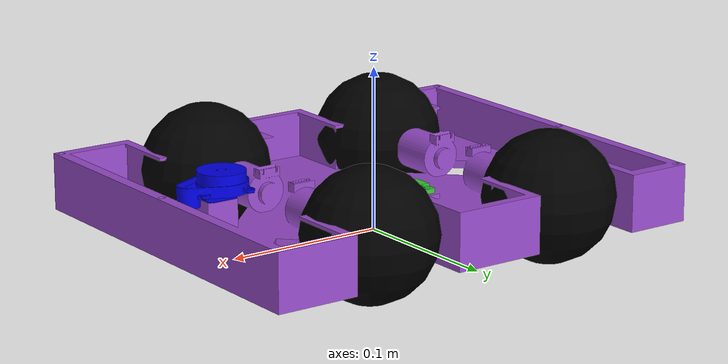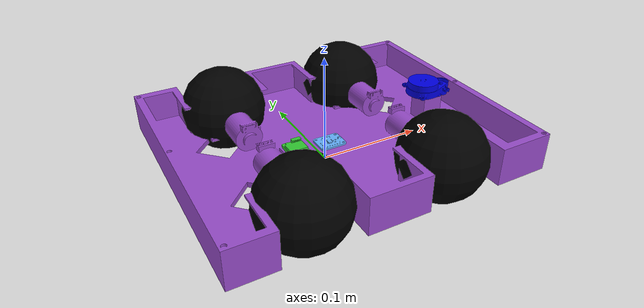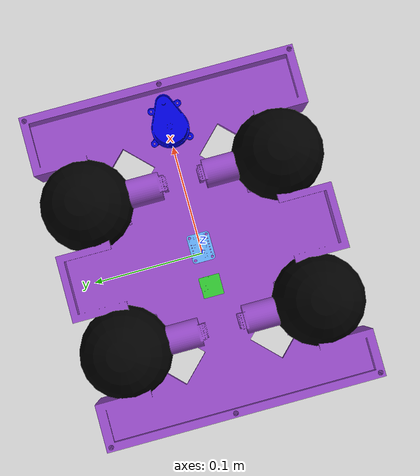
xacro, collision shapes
<?xml version="1.0" ?>
<robot name="chipta" xmlns:xacro="http://www.ros.org/wiki/xacro">

<xacro:include filename="$(find helios_description)/urdf/materials.xacro" />
<xacro:include filename="$(find helios_description)/urdf/helios_description.ros2control.xacro" />
<xacro:include filename="$(find helios_description)/urdf/helios_description.gazebo" />

<link name="base_footprint"/>

<link name="base_link">
  <inertial>
    <origin xyz="0.006285285436363787 2.3801220083224483e-05 0.02118626436883177" rpy="0 0 0"/>
    <mass value="3.955246639227324"/>
    <inertia ixx="0.017496" iyy="0.029781" izz="0.046394" ixy="2.8e-05" iyz="-1e-06" ixz="3.5e-05"/>
  </inertial>
  <visual>
    <origin xyz="0 0 0" rpy="0 0 0"/>
    <geometry>
      <mesh filename="file://$(find helios_description)/meshes/base_link.stl" scale="0.001 0.001 0.001"/>
    </geometry>
    <material name="purple"/>
  </visual>
  <collision>
    <origin xyz="0 0 0" rpy="0 0 0"/>
    <geometry>
      <mesh filename="file://$(find helios_description)/meshes/base_link.stl" scale="0.001 0.001 0.001"/>
    </geometry>
  </collision>
</link>

<link name="IMU_v1_1">
  <inertial>
    <origin xyz="-4.414700551899457e-05 -1.766564942399154e-05 0.0008825652972892541" rpy="0 0 0"/>
    <mass value="0.006457505501645493"/>
    <inertia ixx="0.0" iyy="0.0" izz="1e-06" ixy="-0.0" iyz="0.0" ixz="0.0"/>
  </inertial>
  <visual>
    <origin xyz="-0.005 -0.0 -0.015" rpy="0 0 0"/>
    <geometry>
      <mesh filename="file://$(find helios_description)/meshes/IMU_v1_1.stl" scale="0.001 0.001 0.001"/>
    </geometry>
    <material name="light_blue"/>
  </visual>
  <collision>
    <origin xyz="-0.005 -0.0 -0.015" rpy="0 0 0"/>
    <geometry>
      <mesh filename="file://$(find helios_description)/meshes/IMU_v1_1.stl" scale="0.001 0.001 0.001"/>
    </geometry>
  </collision>
</link>

<link name="GPS_v1_1">
  <inertial>
    <origin xyz="0.00011627593093297209 -0.0003346346187937373 0.0027235072348321433" rpy="0 0 0"/>
    <mass value="0.011550869015027797"/>
    <inertia ixx="0.0" iyy="0.0" izz="1e-06" ixy="-0.0" iyz="0.0" ixz="-0.0"/>
  </inertial>
  <visual>
    <origin xyz="0.03 -0.0 -0.018" rpy="0 0 0"/>
    <geometry>
      <mesh filename="file://$(find helios_description)/meshes/GPS_v1_1.stl" scale="0.001 0.001 0.001"/>
    </geometry>
    <material name="green"/>
  </visual>
  <collision>
    <origin xyz="0.03 -0.0 -0.018" rpy="0 0 0"/>
    <geometry>
      <mesh filename="file://$(find helios_description)/meshes/GPS_v1_1.stl" scale="0.001 0.001 0.001"/>
    </geometry>
  </collision>
</link>

<link name="Lidar_v1_1">
  <inertial>
    <origin xyz="-0.0021965658486673423 2.561119446363924e-05 0.007120513681703584" rpy="0 0 0"/>
    <mass value="0.088236472062788"/>
    <inertia ixx="6e-06" iyy="1.1e-05" izz="1.4e-05" ixy="-0.0" iyz="0.0" ixz="2e-06"/>
  </inertial>
  <visual>
    <origin xyz="-0.1125 0.0015 -0.04" rpy="0 0 0"/>
    <geometry>
      <mesh filename="file://$(find helios_description)/meshes/Lidar_v1_1.stl" scale="0.001 0.001 0.001"/>
    </geometry>
    <material name="blue"/>
  </visual>
  <collision>
    <origin xyz="-0.1125 0.0015 -0.04" rpy="0 0 0"/>
    <geometry>
      <mesh filename="file://$(find helios_description)/meshes/Lidar_v1_1.stl" scale="0.001 0.001 0.001"/>
    </geometry>
  </collision>
</link>

<link name="Wheel_front_left_1">
  <inertial>
    <origin xyz="-1.27101263236451e-07 0.013847399301558358 -3.5503662683053494e-07" rpy="0 0 0"/>
    <mass value="0.032871818242545134"/>
    <inertia ixx="1e-05" iyy="1.8e-05" izz="1e-05" ixy="0.0" iyz="0.0" ixz="0.0"/>
  </inertial>
  <visual>
    <origin xyz="-0.064778 -0.085 -0.030131" rpy="0 0 0"/>
    <geometry>
      <mesh filename="file://$(find helios_description)/meshes/Wheel_front_left_1.stl" scale="0.001 0.001 0.001"/>
    </geometry>
    <material name="black"/>
  </visual>
  <collision>
    <origin xyz="0 0 0" rpy="0 0 0"/>
    <geometry>
      <sphere radius="0.04"/>
    </geometry>
  </collision>
</link>

<joint name="wheel_front_left_joint" type="continuous">
  <origin xyz="0.064778 0.085 0.030131" rpy="0 0 0"/>
  <parent link="base_link"/>
  <child link="Wheel_front_left_1"/>
  <axis xyz="0.0 1.0 0.0"/>
</joint>

<link name="Wheel_front_right_1">
  <inertial>
    <origin xyz="-1.545012792147915e-07 -0.013722805579174657 -4.273110922881074e-07" rpy="0 0 0"/>
    <mass value="0.0361026849885689"/>
    <inertia ixx="1.2e-05" iyy="2.1e-05" izz="1.2e-05" ixy="0.0" iyz="0.0" ixz="-0.0"/>
  </inertial>
  <visual>
    <origin xyz="-0.064778 0.085 -0.030131" rpy="0 0 0"/>
    <geometry>
      <mesh filename="file://$(find helios_description)/meshes/Wheel_front_right_1.stl" scale="0.001 0.001 0.001"/>
    </geometry>
    <material name="black"/>
  </visual>
  <collision>
    <origin xyz="0 0 0" rpy="0 0 0"/>
    <geometry>
      <sphere radius="0.04"/>
    </geometry>
  </collision>
</link>

<joint name="wheel_front_right_joint" type="continuous">
  <origin xyz="0.064778 -0.085 0.030131" rpy="0 0 0"/>
  <parent link="base_link"/>
  <child link="Wheel_front_right_1"/>
  <axis xyz="0.0 1.0 0.0"/>
</joint>

<link name="Wheel_rear_right_1">
  <inertial>
    <origin xyz="2.3534519708046098e-08 -0.013847399301558358 -3.560736444099821e-07" rpy="0 0 0"/>
    <mass value="0.032871818242545016"/>
    <inertia ixx="1e-05" iyy="1.8e-05" izz="1e-05" ixy="0.0" iyz="-0.0" ixz="-0.0"/>
  </inertial>
  <visual>
    <origin xyz="0.064778 0.085 -0.030131" rpy="0 0 0"/>
    <geometry>
      <mesh filename="file://$(find helios_description)/meshes/Wheel_rear_right_1.stl" scale="0.001 0.001 0.001"/>
    </geometry>
    <material name="black"/>
  </visual>
  <collision>
    <origin xyz="0 0 0" rpy="0 0 0"/>
    <geometry>
      <sphere radius="0.04"/>
    </geometry>
  </collision>
</link>

<link name="Wheel_rear_left_1">
  <inertial>
    <origin xyz="5.994378951545976e-08 0.013722802958087754 -4.3329028434624384e-07" rpy="0 0 0"/>
    <mass value="0.03610268483883613"/>
    <inertia ixx="1.2e-05" iyy="2.1e-05" izz="1.2e-05" ixy="0.0" iyz="-0.0" ixz="0.0"/>
  </inertial>
  <visual>
    <origin xyz="0.064778 -0.085 -0.030131" rpy="0 0 0"/>
    <geometry>
      <mesh filename="file://$(find helios_description)/meshes/Wheel_rear_left_1.stl" scale="0.001 0.001 0.001"/>
    </geometry>
    <material name="black"/>
  </visual>
  <collision>
    <origin xyz="0 0 0" rpy="0 0 0"/>
    <geometry>
      <sphere radius="0.04"/>
    </geometry>
  </collision>
</link>

<joint name="fixed_base_joint" type="fixed">
  <parent link="base_footprint" />
  <child link="base_link" />
  <origin xyz="0 0 0" rpy="0 0 0" />
</joint>

<joint name="Rigid 14" type="fixed">
  <origin xyz="0.005 0.0 0.015" rpy="0 0 0"/>
  <parent link="base_link"/>
  <child link="IMU_v1_1"/>
</joint>

<joint name="Rigid 22" type="fixed">
  <origin xyz="-0.03 0.0 0.018" rpy="0 0 0"/>
  <parent link="base_link"/>
  <child link="GPS_v1_1"/>
</joint>

<joint name="Rigid 23" type="fixed">
  <origin xyz="0.1125 -0.0015 0.04" rpy="0 0 0"/>
  <parent link="base_link"/>
  <child link="Lidar_v1_1"/>
</joint>

<joint name="wheel_rear_right_joint" type="continuous">
  <origin xyz="-0.064778 -0.085 0.030131" rpy="0 0 0"/>
  <parent link="base_link"/>
  <child link="Wheel_rear_right_1"/>
  <axis xyz="0.0 1.0 0.0"/>
</joint>

<joint name="wheel_rear_left_joint" type="continuous">
  <origin xyz="-0.064778 0.085 0.030131" rpy="0 0 0"/>
  <parent link="base_link"/>
  <child link="Wheel_rear_left_1"/>
  <axis xyz="0.0 1.0 0.0"/>
</joint>

</robot>

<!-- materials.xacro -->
<robot name="helios_description" xmlns:xacro="http://www.ros.org/wiki/xacro" >

<material name="silver">
  <color rgba="0.700 0.700 0.700 1.000"/>
</material>

<material name="purple">
  <color rgba="0.6 0.3 0.8 1.0"/>
</material>

<material name="black">
  <color rgba="0 0 0 1"/>
</material>

<material name="blue">
  <color rgba="0 0 0.9 1"/>
</material>

<material name="light_blue">
  <color rgba="0.4 0.7 1.0 1.0"/>
</material>

<material name="green">
  <color rgba="0.2 0.8 0.2 1.0"/>
</material>

</robot>

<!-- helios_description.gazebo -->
<robot name="helios_description" xmlns:xacro="http://www.ros.org/wiki/xacro" >

<xacro:property name="body_color" value="Gazebo/Silver" />
<xacro:property name="wheel_color" value="Gazebo/Black" />
<xacro:property name="imu_color" value="Gazebo/Blue" />
<xacro:property name="gps_color" value="Gazebo/Black" />
<xacro:property name="lidar_color" value="Gazebo/Blue" />

<gazebo>
    <plugin filename="gz_ros2_control-system" name="gz_ros2_control::GazeboSimROS2ControlPlugin">
        <parameters>$(find helios_description)/config/controllers.yaml</parameters>
        <ros>
            <remapping>/controller_manager/robot_description:=/robot_description</remapping>
        </ros>
    </plugin>
</gazebo>

<gazebo reference="base_link">
  <material>${body_color}</material>
  <mu1>0.2</mu1>
  <mu2>0.2</mu2>
  <self_collide>true</self_collide>
  <gravity>true</gravity>
</gazebo>

<gazebo reference="IMU_v1_1">
  <material>${imu_color}</material>
  <mu1>0.2</mu1>
  <mu2>0.2</mu2>
  <self_collide>true</self_collide>
</gazebo>

<gazebo reference="GPS_v1_1">
  <material>${gps_color}</material>
  <mu1>0.2</mu1>
  <mu2>0.2</mu2>
  <self_collide>true</self_collide>
</gazebo>

<gazebo reference="Lidar_v1_1">
  <material>${lidar_color}</material>
  <mu1>0.2</mu1>
  <mu2>0.2</mu2>
  <self_collide>true</self_collide>
</gazebo>

<gazebo reference="Wheel_front_left_1">
  <material>${wheel_color}</material>
  <mu1>0.2</mu1>
  <mu2>0.2</mu2>
  <self_collide>true</self_collide>
</gazebo>

<gazebo reference="Wheel_front_right_1">
  <material>${wheel_color}</material>
  <mu1>0.2</mu1>
  <mu2>0.2</mu2>
  <self_collide>true</self_collide>
</gazebo>

<gazebo reference="Wheel_rear_right_1">
  <material>${wheel_color}</material>
  <mu1>0.2</mu1>
  <mu2>0.2</mu2>
  <self_collide>true</self_collide>
</gazebo>

<gazebo reference="Wheel_rear_left_1">
  <material>${wheel_color}</material>
  <mu1>0.2</mu1>
  <mu2>0.2</mu2>
  <self_collide>true</self_collide>
</gazebo>

</robot>
